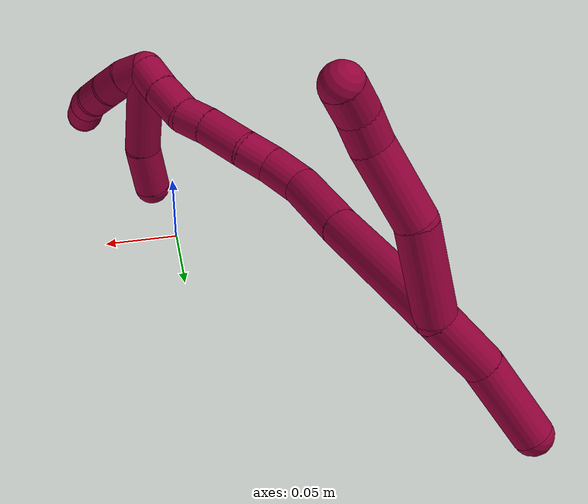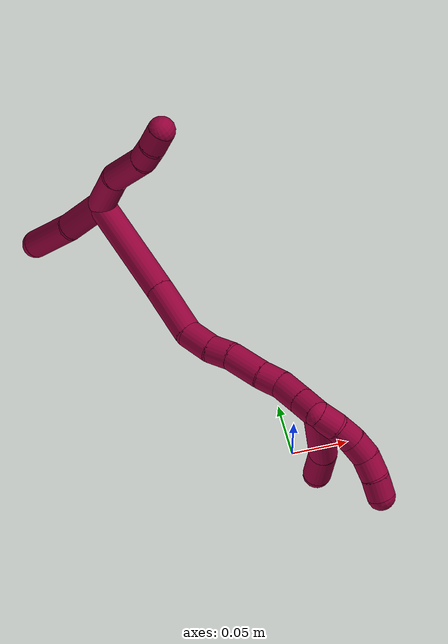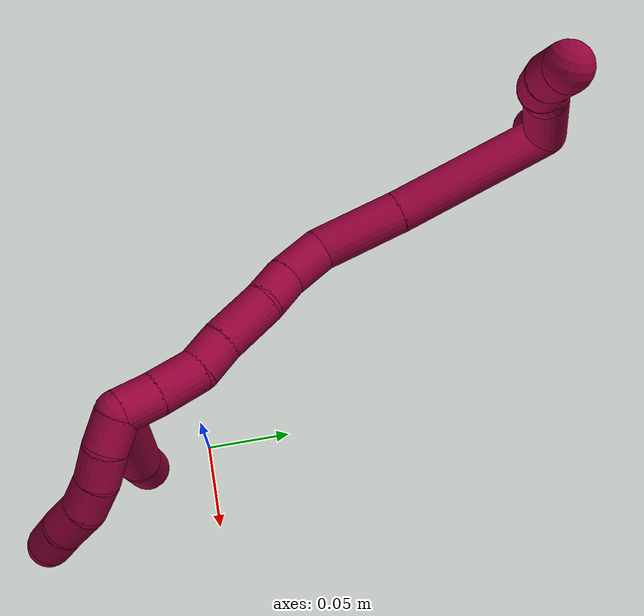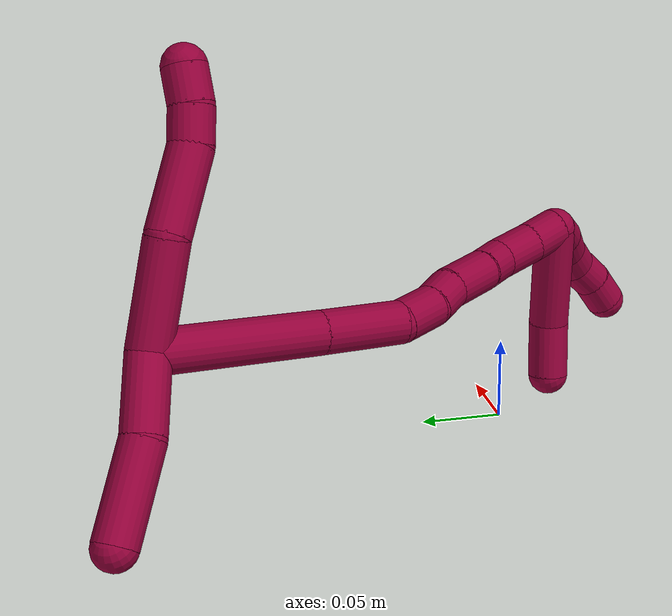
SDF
<sdf version="1.7">
 <world name="default">
  <model name="8">
   <static>0</static>
   <link name="8">
    <collision name="collision-cylinder-e_1_2_8">
     <pose>0.012457 -0.016718 0.021422 0.662703 0.429832 0.149916</pose>
     <geometry><cylinder><radius>0.0125</radius><length>0.059785</length></cylinder></geometry>
     <surface>
      <friction><ode><mu>1.16</mu><mu2>1.16</mu2><slip1>0</slip1><slip2>0</slip2></ode></friction>
      <contact><ode><kp>1e+06</kp><kd>1</kd><max_vel>0</max_vel><min_depth>0.001</min_depth></ode></contact>
     </surface>
    </collision>
    <visual name="visual-cylinder-e_1_2_8">
     <pose>0.012457 -0.016718 0.021422 0.662703 0.429832 0.149916</pose>
     <geometry><cylinder><radius>0.0125</radius><length>0.059785</length></cylinder></geometry>
     <material><ambient>0.584314 0 0.227451 1</ambient></material>
    </visual>
    <collision name="collision-cylinder-e_2_8_9">
     <pose>0.039532 -0.049135 0.05464 0.926368 0.639959 0.32801</pose>
     <geometry><cylinder><radius>0.0125</radius><length>0.048961</length></cylinder></geometry>
     <surface>
      <friction><ode><mu>1.16</mu><mu2>1.16</mu2><slip1>0</slip1><slip2>0</slip2></ode></friction>
      <contact><ode><kp>1e+06</kp><kd>1</kd><max_vel>0</max_vel><min_depth>0.001</min_depth></ode></contact>
     </surface>
    </collision>
    <visual name="visual-cylinder-e_2_8_9">
     <pose>0.039532 -0.049135 0.05464 0.926368 0.639959 0.32801</pose>
     <geometry><cylinder><radius>0.0125</radius><length>0.048961</length></cylinder></geometry>
     <material><ambient>0.584314 0 0.227451 1</ambient></material>
    </visual>
    <collision name="collision-cylinder-e_3_9_10">
     <pose>0.060388 -0.069392 0.073294 0.586728 0.648216 0.202278</pose>
     <geometry><cylinder><radius>0.0125</radius><length>0.020661</length></cylinder></geometry>
     <surface>
      <friction><ode><mu>1.16</mu><mu2>1.16</mu2><slip1>0</slip1><slip2>0</slip2></ode></friction>
      <contact><ode><kp>1e+06</kp><kd>1</kd><max_vel>0</max_vel><min_depth>0.001</min_depth></ode></contact>
     </surface>
    </collision>
    <visual name="visual-cylinder-e_3_9_10">
     <pose>0.060388 -0.069392 0.073294 0.586728 0.648216 0.202278</pose>
     <geometry><cylinder><radius>0.0125</radius><length>0.020661</length></cylinder></geometry>
     <material><ambient>0.584314 0 0.227451 1</ambient></material>
    </visual>
    <collision name="collision-cylinder-e_4_10_6">
     <pose>0.073723 -0.07672 0.087079 0.380181 0.760489 0.153512</pose>
     <geometry><cylinder><radius>0.0125</radius><length>0.020593</length></cylinder></geometry>
     <surface>
      <friction><ode><mu>1.16</mu><mu2>1.16</mu2><slip1>0</slip1><slip2>0</slip2></ode></friction>
      <contact><ode><kp>1e+06</kp><kd>1</kd><max_vel>0</max_vel><min_depth>0.001</min_depth></ode></contact>
     </surface>
    </collision>
    <visual name="visual-cylinder-e_4_10_6">
     <pose>0.073723 -0.07672 0.087079 0.380181 0.760489 0.153512</pose>
     <geometry><cylinder><radius>0.0125</radius><length>0.020593</length></cylinder></geometry>
     <material><ambient>0.584314 0 0.227451 1</ambient></material>
    </visual>
    <collision name="collision-cylinder-e_1_2_11">
     <pose>-0.0174 0.010521 -0.009374 -2.29858 -0.890088 1.63255</pose>
     <geometry><cylinder><radius>0.0125</radius><length>0.044781</length></cylinder></geometry>
     <surface>
      <friction><ode><mu>1.16</mu><mu2>1.16</mu2><slip1>0</slip1><slip2>0</slip2></ode></friction>
      <contact><ode><kp>1e+06</kp><kd>1</kd><max_vel>0</max_vel><min_depth>0.001</min_depth></ode></contact>
     </surface>
    </collision>
    <visual name="visual-cylinder-e_1_2_11">
     <pose>-0.0174 0.010521 -0.009374 -2.29858 -0.890088 1.63255</pose>
     <geometry><cylinder><radius>0.0125</radius><length>0.044781</length></cylinder></geometry>
     <material><ambient>0.584314 0 0.227451 1</ambient></material>
    </visual>
    <collision name="collision-cylinder-e_2_11_5">
     <pose>-0.052682 0.038668 -0.030233 -2.14831 -0.704478 1.19194</pose>
     <geometry><cylinder><radius>0.0125</radius><length>0.055219</length></cylinder></geometry>
     <surface>
      <friction><ode><mu>1.16</mu><mu2>1.16</mu2><slip1>0</slip1><slip2>0</slip2></ode></friction>
      <contact><ode><kp>1e+06</kp><kd>1</kd><max_vel>0</max_vel><min_depth>0.001</min_depth></ode></contact>
     </surface>
    </collision>
    <visual name="visual-cylinder-e_2_11_5">
     <pose>-0.052682 0.038668 -0.030233 -2.14831 -0.704478 1.19194</pose>
     <geometry><cylinder><radius>0.0125</radius><length>0.055219</length></cylinder></geometry>
     <material><ambient>0.584314 0 0.227451 1</ambient></material>
    </visual>
    <collision name="collision-cylinder-e_1_2_12">
     <pose>0.002832 -0.044106 -0.023301 2.05682 0.056713 0.094057</pose>
     <geometry><cylinder><radius>0.0125</radius><length>0.099926</length></cylinder></geometry>
     <surface>
      <friction><ode><mu>1.16</mu><mu2>1.16</mu2><slip1>0</slip1><slip2>0</slip2></ode></friction>
      <contact><ode><kp>1e+06</kp><kd>1</kd><max_vel>0</max_vel><min_depth>0.001</min_depth></ode></contact>
     </surface>
    </collision>
    <visual name="visual-cylinder-e_1_2_12">
     <pose>0.002832 -0.044106 -0.023301 2.05682 0.056713 0.094057</pose>
     <geometry><cylinder><radius>0.0125</radius><length>0.099926</length></cylinder></geometry>
     <material><ambient>0.584314 0 0.227451 1</ambient></material>
    </visual>
    <collision name="collision-cylinder-e_2_12_13">
     <pose>0.006578 -0.110871 -0.057608 2.02299 0.036249 0.057897</pose>
     <geometry><cylinder><radius>0.0125</radius><length>0.050413</length></cylinder></geometry>
     <surface>
      <friction><ode><mu>1.16</mu><mu2>1.16</mu2><slip1>0</slip1><slip2>0</slip2></ode></friction>
      <contact><ode><kp>1e+06</kp><kd>1</kd><max_vel>0</max_vel><min_depth>0.001</min_depth></ode></contact>
     </surface>
    </collision>
    <visual name="visual-cylinder-e_2_12_13">
     <pose>0.006578 -0.110871 -0.057608 2.02299 0.036249 0.057897</pose>
     <geometry><cylinder><radius>0.0125</radius><length>0.050413</length></cylinder></geometry>
     <material><ambient>0.584314 0 0.227451 1</ambient></material>
    </visual>
    <collision name="collision-cylinder-e_3_13_14">
     <pose>0.012445 -0.144996 -0.073438 1.96894 0.378939 0.562117</pose>
     <geometry><cylinder><radius>0.0125</radius><length>0.026781</length></cylinder></geometry>
     <surface>
      <friction><ode><mu>1.16</mu><mu2>1.16</mu2><slip1>0</slip1><slip2>0</slip2></ode></friction>
      <contact><ode><kp>1e+06</kp><kd>1</kd><max_vel>0</max_vel><min_depth>0.001</min_depth></ode></contact>
     </surface>
    </collision>
    <visual name="visual-cylinder-e_3_13_14">
     <pose>0.012445 -0.144996 -0.073438 1.96894 0.378939 0.562117</pose>
     <geometry><cylinder><radius>0.0125</radius><length>0.026781</length></cylinder></geometry>
     <material><ambient>0.584314 0 0.227451 1</ambient></material>
    </visual>
    <collision name="collision-cylinder-e_4_14_15">
     <pose>0.0234 -0.164564 -0.081124 1.91054 0.609761 0.837375</pose>
     <geometry><cylinder><radius>0.0125</radius><length>0.020961</length></cylinder></geometry>
     <surface>
      <friction><ode><mu>1.16</mu><mu2>1.16</mu2><slip1>0</slip1><slip2>0</slip2></ode></friction>
      <contact><ode><kp>1e+06</kp><kd>1</kd><max_vel>0</max_vel><min_depth>0.001</min_depth></ode></contact>
     </surface>
    </collision>
    <visual name="visual-cylinder-e_4_14_15">
     <pose>0.0234 -0.164564 -0.081124 1.91054 0.609761 0.837375</pose>
     <geometry><cylinder><radius>0.0125</radius><length>0.020961</length></cylinder></geometry>
     <material><ambient>0.584314 0 0.227451 1</ambient></material>
    </visual>
    <collision name="collision-cylinder-e_5_15_16">
     <pose>0.036228 -0.186332 -0.090346 2.00629 0.425229 0.652869</pose>
     <geometry><cylinder><radius>0.0125</radius><length>0.033096</length></cylinder></geometry>
     <surface>
      <friction><ode><mu>1.16</mu><mu2>1.16</mu2><slip1>0</slip1><slip2>0</slip2></ode></friction>
      <contact><ode><kp>1e+06</kp><kd>1</kd><max_vel>0</max_vel><min_depth>0.001</min_depth></ode></contact>
     </surface>
    </collision>
    <visual name="visual-cylinder-e_5_15_16">
     <pose>0.036228 -0.186332 -0.090346 2.00629 0.425229 0.652869</pose>
     <geometry><cylinder><radius>0.0125</radius><length>0.033096</length></cylinder></geometry>
     <material><ambient>0.584314 0 0.227451 1</ambient></material>
    </visual>
    <collision name="collision-cylinder-e_6_16_17">
     <pose>0.048235 -0.207684 -0.100814 2.06172 0.536335 0.859763</pose>
     <geometry><cylinder><radius>0.0125</radius><length>0.020275</length></cylinder></geometry>
     <surface>
      <friction><ode><mu>1.16</mu><mu2>1.16</mu2><slip1>0</slip1><slip2>0</slip2></ode></friction>
      <contact><ode><kp>1e+06</kp><kd>1</kd><max_vel>0</max_vel><min_depth>0.001</min_depth></ode></contact>
     </surface>
    </collision>
    <visual name="visual-cylinder-e_6_16_17">
     <pose>0.048235 -0.207684 -0.100814 2.06172 0.536335 0.859763</pose>
     <geometry><cylinder><radius>0.0125</radius><length>0.020275</length></cylinder></geometry>
     <material><ambient>0.584314 0 0.227451 1</ambient></material>
    </visual>
    <collision name="collision-cylinder-e_7_17_18">
     <pose>0.05711 -0.227786 -0.10818 1.82744 0.280277 0.36172</pose>
     <geometry><cylinder><radius>0.0125</radius><length>0.026718</length></cylinder></geometry>
     <surface>
      <friction><ode><mu>1.16</mu><mu2>1.16</mu2><slip1>0</slip1><slip2>0</slip2></ode></friction>
      <contact><ode><kp>1e+06</kp><kd>1</kd><max_vel>0</max_vel><min_depth>0.001</min_depth></ode></contact>
     </surface>
    </collision>
    <visual name="visual-cylinder-e_7_17_18">
     <pose>0.05711 -0.227786 -0.10818 1.82744 0.280277 0.36172</pose>
     <geometry><cylinder><radius>0.0125</radius><length>0.026718</length></cylinder></geometry>
     <material><ambient>0.584314 0 0.227451 1</ambient></material>
    </visual>
    <collision name="collision-cylinder-e_8_18_1">
     <pose>0.063554 -0.25061 -0.113254 1.74346 0.254519 0.302077</pose>
     <geometry><cylinder><radius>0.0125</radius><length>0.021831</length></cylinder></geometry>
     <surface>
      <friction><ode><mu>1.16</mu><mu2>1.16</mu2><slip1>0</slip1><slip2>0</slip2></ode></friction>
      <contact><ode><kp>1e+06</kp><kd>1</kd><max_vel>0</max_vel><min_depth>0.001</min_depth></ode></contact>
     </surface>
    </collision>
    <visual name="visual-cylinder-e_8_18_1">
     <pose>0.063554 -0.25061 -0.113254 1.74346 0.254519 0.302077</pose>
     <geometry><cylinder><radius>0.0125</radius><length>0.021831</length></cylinder></geometry>
     <material><ambient>0.584314 0 0.227451 1</ambient></material>
    </visual>
    <collision name="collision-cylinder-e_1_1_19">
     <pose>0.070237 -0.264458 -0.123594 2.75788 0.404375 1.62461</pose>
     <geometry><cylinder><radius>0.0125</radius><length>0.02</length></cylinder></geometry>
     <surface>
      <friction><ode><mu>1.16</mu><mu2>1.16</mu2><slip1>0</slip1><slip2>0</slip2></ode></friction>
      <contact><ode><kp>1e+06</kp><kd>1</kd><max_vel>0</max_vel><min_depth>0.001</min_depth></ode></contact>
     </surface>
    </collision>
    <visual name="visual-cylinder-e_1_1_19">
     <pose>0.070237 -0.264458 -0.123594 2.75788 0.404375 1.62461</pose>
     <geometry><cylinder><radius>0.0125</radius><length>0.02</length></cylinder></geometry>
     <material><ambient>0.584314 0 0.227451 1</ambient></material>
    </visual>
    <collision name="collision-cylinder-e_2_19_20">
     <pose>0.076967 -0.269901 -0.141509 2.93165 0.283383 1.86926</pose>
     <geometry><cylinder><radius>0.0125</radius><length>0.02</length></cylinder></geometry>
     <surface>
      <friction><ode><mu>1.16</mu><mu2>1.16</mu2><slip1>0</slip1><slip2>0</slip2></ode></friction>
      <contact><ode><kp>1e+06</kp><kd>1</kd><max_vel>0</max_vel><min_depth>0.001</min_depth></ode></contact>
     </surface>
    </collision>
    <visual name="visual-cylinder-e_2_19_20">
     <pose>0.076967 -0.269901 -0.141509 2.93165 0.283383 1.86926</pose>
     <geometry><cylinder><radius>0.0125</radius><length>0.02</length></cylinder></geometry>
     <material><ambient>0.584314 0 0.227451 1</ambient></material>
    </visual>
    <collision name="collision-cylinder-e_3_20_21">
     <pose>0.081084 -0.274872 -0.160356 2.83729 0.13248 0.816632</pose>
     <geometry><cylinder><radius>0.0125</radius><length>0.02</length></cylinder></geometry>
     <surface>
      <friction><ode><mu>1.16</mu><mu2>1.16</mu2><slip1>0</slip1><slip2>0</slip2></ode></friction>
      <contact><ode><kp>1e+06</kp><kd>1</kd><max_vel>0</max_vel><min_depth>0.001</min_depth></ode></contact>
     </surface>
    </collision>
    <visual name="visual-cylinder-e_3_20_21">
     <pose>0.081084 -0.274872 -0.160356 2.83729 0.13248 0.816632</pose>
     <geometry><cylinder><radius>0.0125</radius><length>0.02</length></cylinder></geometry>
     <material><ambient>0.584314 0 0.227451 1</ambient></material>
    </visual>
    <collision name="collision-cylinder-e_4_21_22">
     <pose>0.081165 -0.282266 -0.178695 2.67942 -0.124314 -0.517178</pose>
     <geometry><cylinder><radius>0.0125</radius><length>0.02</length></cylinder></geometry>
     <surface>
      <friction><ode><mu>1.16</mu><mu2>1.16</mu2><slip1>0</slip1><slip2>0</slip2></ode></friction>
      <contact><ode><kp>1e+06</kp><kd>1</kd><max_vel>0</max_vel><min_depth>0.001</min_depth></ode></contact>
     </surface>
    </collision>
    <visual name="visual-cylinder-e_4_21_22">
     <pose>0.081165 -0.282266 -0.178695 2.67942 -0.124314 -0.517178</pose>
     <geometry><cylinder><radius>0.0125</radius><length>0.02</length></cylinder></geometry>
     <material><ambient>0.584314 0 0.227451 1</ambient></material>
    </visual>
    <collision name="collision-cylinder-e_5_22_4">
     <pose>0.077754 -0.289452 -0.19694 2.85479 -0.218914 -1.30113</pose>
     <geometry><cylinder><radius>0.0125</radius><length>0.02</length></cylinder></geometry>
     <surface>
      <friction><ode><mu>1.16</mu><mu2>1.16</mu2><slip1>0</slip1><slip2>0</slip2></ode></friction>
      <contact><ode><kp>1e+06</kp><kd>1</kd><max_vel>0</max_vel><min_depth>0.001</min_depth></ode></contact>
     </surface>
    </collision>
    <visual name="visual-cylinder-e_5_22_4">
     <pose>0.077754 -0.289452 -0.19694 2.85479 -0.218914 -1.30113</pose>
     <geometry><cylinder><radius>0.0125</radius><length>0.02</length></cylinder></geometry>
     <material><ambient>0.584314 0 0.227451 1</ambient></material>
    </visual>
    <collision name="collision-cylinder-e_1_1_23">
     <pose>0.059384 -0.250454 -0.145186 -2.80427 -0.21345 1.12315</pose>
     <geometry><cylinder><radius>0.0125</radius><length>0.065314</length></cylinder></geometry>
     <surface>
      <friction><ode><mu>1.16</mu><mu2>1.16</mu2><slip1>0</slip1><slip2>0</slip2></ode></friction>
      <contact><ode><kp>1e+06</kp><kd>1</kd><max_vel>0</max_vel><min_depth>0.001</min_depth></ode></contact>
     </surface>
    </collision>
    <visual name="visual-cylinder-e_1_1_23">
     <pose>0.059384 -0.250454 -0.145186 -2.80427 -0.21345 1.12315</pose>
     <geometry><cylinder><radius>0.0125</radius><length>0.065314</length></cylinder></geometry>
     <material><ambient>0.584314 0 0.227451 1</ambient></material>
    </visual>
    <collision name="collision-cylinder-e_2_23_3">
     <pose>0.045227 -0.233388 -0.189659 -2.71628 -0.430608 1.58356</pose>
     <geometry><cylinder><radius>0.0125</radius><length>0.034686</length></cylinder></geometry>
     <surface>
      <friction><ode><mu>1.16</mu><mu2>1.16</mu2><slip1>0</slip1><slip2>0</slip2></ode></friction>
      <contact><ode><kp>1e+06</kp><kd>1</kd><max_vel>0</max_vel><min_depth>0.001</min_depth></ode></contact>
     </surface>
    </collision>
    <visual name="visual-cylinder-e_2_23_3">
     <pose>0.045227 -0.233388 -0.189659 -2.71628 -0.430608 1.58356</pose>
     <geometry><cylinder><radius>0.0125</radius><length>0.034686</length></cylinder></geometry>
     <material><ambient>0.584314 0 0.227451 1</ambient></material>
    </visual>
    <collision name="collision-sphere-3">
     <pose>0.037988 -0.226885 -0.204015 0 -0 0</pose>
     <geometry><sphere><radius>0.0125</radius></sphere></geometry>
     <surface>
      <friction><ode><mu>1.16</mu><mu2>1.16</mu2><slip1>0</slip1><slip2>0</slip2></ode></friction>
      <contact><ode><kp>1e+06</kp><kd>1</kd><max_vel>0</max_vel><min_depth>0.001</min_depth></ode></contact>
     </surface>
    </collision>
    <visual name="visual-sphere-3">
     <pose>0.037988 -0.226885 -0.204015 0 -0 0</pose>
     <geometry><sphere><radius>0.0125</radius></sphere></geometry>
     <material><ambient>0.584314 0 0.227451 1</ambient></material>
    </visual>
    <collision name="collision-sphere-23">
     <pose>0.052467 -0.239891 -0.175303 0 -0 0</pose>
     <geometry><sphere><radius>0.0125</radius></sphere></geometry>
     <surface>
      <friction><ode><mu>1.16</mu><mu2>1.16</mu2><slip1>0</slip1><slip2>0</slip2></ode></friction>
      <contact><ode><kp>1e+06</kp><kd>1</kd><max_vel>0</max_vel><min_depth>0.001</min_depth></ode></contact>
     </surface>
    </collision>
    <visual name="visual-sphere-23">
     <pose>0.052467 -0.239891 -0.175303 0 -0 0</pose>
     <geometry><sphere><radius>0.0125</radius></sphere></geometry>
     <material><ambient>0.584314 0 0.227451 1</ambient></material>
    </visual>
    <collision name="collision-sphere-4">
     <pose>0.075582 -0.292214 -0.206302 0 -0 0</pose>
     <geometry><sphere><radius>0.0125</radius></sphere></geometry>
     <surface>
      <friction><ode><mu>1.16</mu><mu2>1.16</mu2><slip1>0</slip1><slip2>0</slip2></ode></friction>
      <contact><ode><kp>1e+06</kp><kd>1</kd><max_vel>0</max_vel><min_depth>0.001</min_depth></ode></contact>
     </surface>
    </collision>
    <visual name="visual-sphere-4">
     <pose>0.075582 -0.292214 -0.206302 0 -0 0</pose>
     <geometry><sphere><radius>0.0125</radius></sphere></geometry>
     <material><ambient>0.584314 0 0.227451 1</ambient></material>
    </visual>
    <collision name="collision-sphere-22">
     <pose>0.079925 -0.286691 -0.187577 0 -0 0</pose>
     <geometry><sphere><radius>0.0125</radius></sphere></geometry>
     <surface>
      <friction><ode><mu>1.16</mu><mu2>1.16</mu2><slip1>0</slip1><slip2>0</slip2></ode></friction>
      <contact><ode><kp>1e+06</kp><kd>1</kd><max_vel>0</max_vel><min_depth>0.001</min_depth></ode></contact>
     </surface>
    </collision>
    <visual name="visual-sphere-22">
     <pose>0.079925 -0.286691 -0.187577 0 -0 0</pose>
     <geometry><sphere><radius>0.0125</radius></sphere></geometry>
     <material><ambient>0.584314 0 0.227451 1</ambient></material>
    </visual>
    <collision name="collision-sphere-21">
     <pose>0.082405 -0.277842 -0.169813 0 -0 0</pose>
     <geometry><sphere><radius>0.0125</radius></sphere></geometry>
     <surface>
      <friction><ode><mu>1.16</mu><mu2>1.16</mu2><slip1>0</slip1><slip2>0</slip2></ode></friction>
      <contact><ode><kp>1e+06</kp><kd>1</kd><max_vel>0</max_vel><min_depth>0.001</min_depth></ode></contact>
     </surface>
    </collision>
    <visual name="visual-sphere-21">
     <pose>0.082405 -0.277842 -0.169813 0 -0 0</pose>
     <geometry><sphere><radius>0.0125</radius></sphere></geometry>
     <material><ambient>0.584314 0 0.227451 1</ambient></material>
    </visual>
    <collision name="collision-sphere-20">
     <pose>0.079763 -0.271902 -0.150899 0 -0 0</pose>
     <geometry><sphere><radius>0.0125</radius></sphere></geometry>
     <surface>
      <friction><ode><mu>1.16</mu><mu2>1.16</mu2><slip1>0</slip1><slip2>0</slip2></ode></friction>
      <contact><ode><kp>1e+06</kp><kd>1</kd><max_vel>0</max_vel><min_depth>0.001</min_depth></ode></contact>
     </surface>
    </collision>
    <visual name="visual-sphere-20">
     <pose>0.079763 -0.271902 -0.150899 0 -0 0</pose>
     <geometry><sphere><radius>0.0125</radius></sphere></geometry>
     <material><ambient>0.584314 0 0.227451 1</ambient></material>
    </visual>
    <collision name="collision-sphere-11">
     <pose>-0.034801 0.021043 -0.018748 0 -0 0</pose>
     <geometry><sphere><radius>0.0125</radius></sphere></geometry>
     <surface>
      <friction><ode><mu>1.16</mu><mu2>1.16</mu2><slip1>0</slip1><slip2>0</slip2></ode></friction>
      <contact><ode><kp>1e+06</kp><kd>1</kd><max_vel>0</max_vel><min_depth>0.001</min_depth></ode></contact>
     </surface>
    </collision>
    <visual name="visual-sphere-11">
     <pose>-0.034801 0.021043 -0.018748 0 -0 0</pose>
     <geometry><sphere><radius>0.0125</radius></sphere></geometry>
     <material><ambient>0.584314 0 0.227451 1</ambient></material>
    </visual>
    <collision name="collision-sphere-6">
     <pose>0.08082 -0.079488 0.094006 0 -0 0</pose>
     <geometry><sphere><radius>0.0125</radius></sphere></geometry>
     <surface>
      <friction><ode><mu>1.16</mu><mu2>1.16</mu2><slip1>0</slip1><slip2>0</slip2></ode></friction>
      <contact><ode><kp>1e+06</kp><kd>1</kd><max_vel>0</max_vel><min_depth>0.001</min_depth></ode></contact>
     </surface>
    </collision>
    <visual name="visual-sphere-6">
     <pose>0.08082 -0.079488 0.094006 0 -0 0</pose>
     <geometry><sphere><radius>0.0125</radius></sphere></geometry>
     <material><ambient>0.584314 0 0.227451 1</ambient></material>
    </visual>
    <collision name="collision-sphere-10">
     <pose>0.066625 -0.073951 0.080151 0 -0 0</pose>
     <geometry><sphere><radius>0.0125</radius></sphere></geometry>
     <surface>
      <friction><ode><mu>1.16</mu><mu2>1.16</mu2><slip1>0</slip1><slip2>0</slip2></ode></friction>
      <contact><ode><kp>1e+06</kp><kd>1</kd><max_vel>0</max_vel><min_depth>0.001</min_depth></ode></contact>
     </surface>
    </collision>
    <visual name="visual-sphere-10">
     <pose>0.066625 -0.073951 0.080151 0 -0 0</pose>
     <geometry><sphere><radius>0.0125</radius></sphere></geometry>
     <material><ambient>0.584314 0 0.227451 1</ambient></material>
    </visual>
    <collision name="collision-sphere-9">
     <pose>0.054151 -0.064833 0.066436 0 -0 0</pose>
     <geometry><sphere><radius>0.0125</radius></sphere></geometry>
     <surface>
      <friction><ode><mu>1.16</mu><mu2>1.16</mu2><slip1>0</slip1><slip2>0</slip2></ode></friction>
      <contact><ode><kp>1e+06</kp><kd>1</kd><max_vel>0</max_vel><min_depth>0.001</min_depth></ode></contact>
     </surface>
    </collision>
    <visual name="visual-sphere-9">
     <pose>0.054151 -0.064833 0.066436 0 -0 0</pose>
     <geometry><sphere><radius>0.0125</radius></sphere></geometry>
     <material><ambient>0.584314 0 0.227451 1</ambient></material>
    </visual>
    <collision name="collision-sphere-2">
     <geometry><sphere><radius>0.0125</radius></sphere></geometry>
     <surface>
      <friction><ode><mu>1.16</mu><mu2>1.16</mu2><slip1>0</slip1><slip2>0</slip2></ode></friction>
      <contact><ode><kp>1e+06</kp><kd>1</kd><max_vel>0</max_vel><min_depth>0.001</min_depth></ode></contact>
     </surface>
    </collision>
    <visual name="visual-sphere-2">
     <geometry><sphere><radius>0.0125</radius></sphere></geometry>
     <material><ambient>0.584314 0 0.227451 1</ambient></material>
    </visual>
    <collision name="collision-sphere-19">
     <pose>0.074171 -0.2679 -0.132119 0 -0 0</pose>
     <geometry><sphere><radius>0.0125</radius></sphere></geometry>
     <surface>
      <friction><ode><mu>1.16</mu><mu2>1.16</mu2><slip1>0</slip1><slip2>0</slip2></ode></friction>
      <contact><ode><kp>1e+06</kp><kd>1</kd><max_vel>0</max_vel><min_depth>0.001</min_depth></ode></contact>
     </surface>
    </collision>
    <visual name="visual-sphere-19">
     <pose>0.074171 -0.2679 -0.132119 0 -0 0</pose>
     <geometry><sphere><radius>0.0125</radius></sphere></geometry>
     <material><ambient>0.584314 0 0.227451 1</ambient></material>
    </visual>
    <collision name="collision-sphere-8">
     <pose>0.024914 -0.033437 0.042843 0 -0 0</pose>
     <geometry><sphere><radius>0.0125</radius></sphere></geometry>
     <surface>
      <friction><ode><mu>1.16</mu><mu2>1.16</mu2><slip1>0</slip1><slip2>0</slip2></ode></friction>
      <contact><ode><kp>1e+06</kp><kd>1</kd><max_vel>0</max_vel><min_depth>0.001</min_depth></ode></contact>
     </surface>
    </collision>
    <visual name="visual-sphere-8">
     <pose>0.024914 -0.033437 0.042843 0 -0 0</pose>
     <geometry><sphere><radius>0.0125</radius></sphere></geometry>
     <material><ambient>0.584314 0 0.227451 1</ambient></material>
    </visual>
    <collision name="collision-sphere-5">
     <pose>-0.070562 0.056293 -0.041718 0 -0 0</pose>
     <geometry><sphere><radius>0.0125</radius></sphere></geometry>
     <surface>
      <friction><ode><mu>1.16</mu><mu2>1.16</mu2><slip1>0</slip1><slip2>0</slip2></ode></friction>
      <contact><ode><kp>1e+06</kp><kd>1</kd><max_vel>0</max_vel><min_depth>0.001</min_depth></ode></contact>
     </surface>
    </collision>
    <visual name="visual-sphere-5">
     <pose>-0.070562 0.056293 -0.041718 0 -0 0</pose>
     <geometry><sphere><radius>0.0125</radius></sphere></geometry>
     <material><ambient>0.584314 0 0.227451 1</ambient></material>
    </visual>
    <collision name="collision-sphere-12">
     <pose>0.005664 -0.088213 -0.046601 0 -0 0</pose>
     <geometry><sphere><radius>0.0125</radius></sphere></geometry>
     <surface>
      <friction><ode><mu>1.16</mu><mu2>1.16</mu2><slip1>0</slip1><slip2>0</slip2></ode></friction>
      <contact><ode><kp>1e+06</kp><kd>1</kd><max_vel>0</max_vel><min_depth>0.001</min_depth></ode></contact>
     </surface>
    </collision>
    <visual name="visual-sphere-12">
     <pose>0.005664 -0.088213 -0.046601 0 -0 0</pose>
     <geometry><sphere><radius>0.0125</radius></sphere></geometry>
     <material><ambient>0.584314 0 0.227451 1</ambient></material>
    </visual>
    <collision name="collision-sphere-13">
     <pose>0.007491 -0.133529 -0.068615 0 -0 0</pose>
     <geometry><sphere><radius>0.0125</radius></sphere></geometry>
     <surface>
      <friction><ode><mu>1.16</mu><mu2>1.16</mu2><slip1>0</slip1><slip2>0</slip2></ode></friction>
      <contact><ode><kp>1e+06</kp><kd>1</kd><max_vel>0</max_vel><min_depth>0.001</min_depth></ode></contact>
     </surface>
    </collision>
    <visual name="visual-sphere-13">
     <pose>0.007491 -0.133529 -0.068615 0 -0 0</pose>
     <geometry><sphere><radius>0.0125</radius></sphere></geometry>
     <material><ambient>0.584314 0 0.227451 1</ambient></material>
    </visual>
    <collision name="collision-sphere-14">
     <pose>0.017398 -0.156464 -0.078261 0 -0 0</pose>
     <geometry><sphere><radius>0.0125</radius></sphere></geometry>
     <surface>
      <friction><ode><mu>1.16</mu><mu2>1.16</mu2><slip1>0</slip1><slip2>0</slip2></ode></friction>
      <contact><ode><kp>1e+06</kp><kd>1</kd><max_vel>0</max_vel><min_depth>0.001</min_depth></ode></contact>
     </surface>
    </collision>
    <visual name="visual-sphere-14">
     <pose>0.017398 -0.156464 -0.078261 0 -0 0</pose>
     <geometry><sphere><radius>0.0125</radius></sphere></geometry>
     <material><ambient>0.584314 0 0.227451 1</ambient></material>
    </visual>
    <collision name="collision-sphere-15">
     <pose>0.029402 -0.172665 -0.083987 0 -0 0</pose>
     <geometry><sphere><radius>0.0125</radius></sphere></geometry>
     <surface>
      <friction><ode><mu>1.16</mu><mu2>1.16</mu2><slip1>0</slip1><slip2>0</slip2></ode></friction>
      <contact><ode><kp>1e+06</kp><kd>1</kd><max_vel>0</max_vel><min_depth>0.001</min_depth></ode></contact>
     </surface>
    </collision>
    <visual name="visual-sphere-15">
     <pose>0.029402 -0.172665 -0.083987 0 -0 0</pose>
     <geometry><sphere><radius>0.0125</radius></sphere></geometry>
     <material><ambient>0.584314 0 0.227451 1</ambient></material>
    </visual>
    <collision name="collision-sphere-16">
     <pose>0.043055 -0.199999 -0.096706 0 -0 0</pose>
     <geometry><sphere><radius>0.0125</radius></sphere></geometry>
     <surface>
      <friction><ode><mu>1.16</mu><mu2>1.16</mu2><slip1>0</slip1><slip2>0</slip2></ode></friction>
      <contact><ode><kp>1e+06</kp><kd>1</kd><max_vel>0</max_vel><min_depth>0.001</min_depth></ode></contact>
     </surface>
    </collision>
    <visual name="visual-sphere-16">
     <pose>0.043055 -0.199999 -0.096706 0 -0 0</pose>
     <geometry><sphere><radius>0.0125</radius></sphere></geometry>
     <material><ambient>0.584314 0 0.227451 1</ambient></material>
    </visual>
    <collision name="collision-sphere-17">
     <pose>0.053415 -0.215369 -0.104922 0 -0 0</pose>
     <geometry><sphere><radius>0.0125</radius></sphere></geometry>
     <surface>
      <friction><ode><mu>1.16</mu><mu2>1.16</mu2><slip1>0</slip1><slip2>0</slip2></ode></friction>
      <contact><ode><kp>1e+06</kp><kd>1</kd><max_vel>0</max_vel><min_depth>0.001</min_depth></ode></contact>
     </surface>
    </collision>
    <visual name="visual-sphere-17">
     <pose>0.053415 -0.215369 -0.104922 0 -0 0</pose>
     <geometry><sphere><radius>0.0125</radius></sphere></geometry>
     <material><ambient>0.584314 0 0.227451 1</ambient></material>
    </visual>
    <collision name="collision-sphere-18">
     <pose>0.060806 -0.240203 -0.111439 0 -0 0</pose>
     <geometry><sphere><radius>0.0125</radius></sphere></geometry>
     <surface>
      <friction><ode><mu>1.16</mu><mu2>1.16</mu2><slip1>0</slip1><slip2>0</slip2></ode></friction>
      <contact><ode><kp>1e+06</kp><kd>1</kd><max_vel>0</max_vel><min_depth>0.001</min_depth></ode></contact>
     </surface>
    </collision>
    <visual name="visual-sphere-18">
     <pose>0.060806 -0.240203 -0.111439 0 -0 0</pose>
     <geometry><sphere><radius>0.0125</radius></sphere></geometry>
     <material><ambient>0.584314 0 0.227451 1</ambient></material>
    </visual>
    <collision name="collision-sphere-1">
     <pose>0.066302 -0.261017 -0.115069 0 -0 0</pose>
     <geometry><sphere><radius>0.0125</radius></sphere></geometry>
     <surface>
      <friction><ode><mu>1.16</mu><mu2>1.16</mu2><slip1>0</slip1><slip2>0</slip2></ode></friction>
      <contact><ode><kp>1e+06</kp><kd>1</kd><max_vel>0</max_vel><min_depth>0.001</min_depth></ode></contact>
     </surface>
    </collision>
    <visual name="visual-sphere-1">
     <pose>0.066302 -0.261017 -0.115069 0 -0 0</pose>
     <geometry><sphere><radius>0.0125</radius></sphere></geometry>
     <material><ambient>0.584314 0 0.227451 1</ambient></material>
    </visual>
    <inertial>
     <pose>0.028637 -0.126865 -0.061607 0 -0 0</pose>
     <mass>0.75</mass>
     <inertia><ixx>0.000229</ixx><ixy>0</ixy><ixz>0</ixz><iyy>2.8e-05</iyy><iyz>0</iyz><izz>7.5e-05</izz></inertia>
    </inertial>
   </link>
   <pose>-0.119248 0.225886 0.111209 -0.36895 -0.310208 0.226284</pose>
  </model>
 </world>
</sdf>
